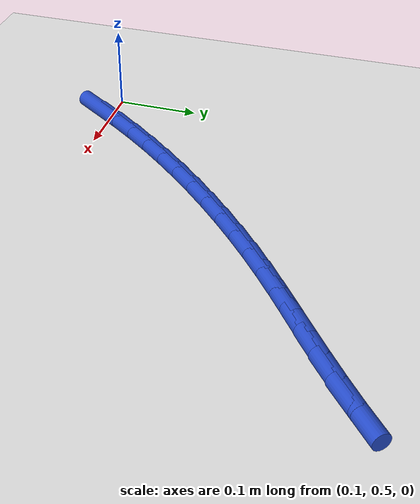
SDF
<sdf version="1.6">
 <world name="default">
  <model name="ground_plane">
   <static>1</static>
   <link name="link">
    <collision name="collision">
     <geometry><plane><normal>0 0 1</normal><size>100 100</size></plane></geometry>
     <surface><friction><ode><mu>100</mu><mu2>50</mu2></ode></friction></surface>
    </collision>
    <visual name="visual">
     <cast_shadows>0</cast_shadows>
     <geometry><plane><normal>0 0 1</normal><size>100 100</size></plane></geometry>
     <material>
      <script><uri>file://media/materials/scripts/gazebo.material</uri><name>Gazebo/WhiteGlow</name></script>
     </material>
    </visual>
   </link>
  </model>
  <model name="line">
   <link name="link_15">
    <pose>0.1416319098778478 0.48983314062781436 0.01 0 1.57 0.9726278926928924</pose>
    <collision name="collision">
     <geometry><cylinder><radius>0.01</radius><length>0.08</length></cylinder></geometry>
    </collision>
    <visual name="visual">
     <material>
      <script><name>Gazebo/Blue</name><uri>file://media/materials/scripts/gazebo.material</uri></script>
     </material>
     <geometry><cylinder><radius>0.01</radius><length>0.08</length></cylinder></geometry>
    </visual>
   </link>
   <link name="link_16">
    <pose>0.16139299856729963 0.518831672388761 0.01 0 1.57 0.9397980050142196</pose>
    <collision name="collision">
     <geometry><cylinder><radius>0.01</radius><length>0.08</length></cylinder></geometry>
    </collision>
    <visual name="visual">
     <material>
      <script><name>Gazebo/Blue</name><uri>file://media/materials/scripts/gazebo.material</uri></script>
     </material>
     <geometry><cylinder><radius>0.01</radius><length>0.08</length></cylinder></geometry>
    </visual>
   </link>
   <link name="link_17">
    <pose>0.18211116984044576 0.547187679252324 0.01 0 1.57 0.9083270444999217</pose>
    <collision name="collision">
     <geometry><cylinder><radius>0.01</radius><length>0.08</length></cylinder></geometry>
    </collision>
    <visual name="visual">
     <material>
      <script><name>Gazebo/Blue</name><uri>file://media/materials/scripts/gazebo.material</uri></script>
     </material>
     <geometry><cylinder><radius>0.01</radius><length>0.08</length></cylinder></geometry>
    </visual>
   </link>
   <link name="link_18">
    <pose>0.2037057947775712 0.5748706418161335 0.01 0 1.57 0.8780822926928599</pose>
    <collision name="collision">
     <geometry><cylinder><radius>0.01</radius><length>0.08</length></cylinder></geometry>
    </collision>
    <visual name="visual">
     <material>
      <script><name>Gazebo/Blue</name><uri>file://media/materials/scripts/gazebo.material</uri></script>
     </material>
     <geometry><cylinder><radius>0.01</radius><length>0.08</length></cylinder></geometry>
    </visual>
   </link>
   <link name="link_19">
    <pose>0.22609624445896115 0.6018500406778199 0.01 0 1.57 0.8489317722083948</pose>
    <collision name="collision">
     <geometry><cylinder><radius>0.01</radius><length>0.08</length></cylinder></geometry>
    </collision>
    <visual name="visual">
     <material>
      <script><name>Gazebo/Blue</name><uri>file://media/materials/scripts/gazebo.material</uri></script>
     </material>
     <geometry><cylinder><radius>0.01</radius><length>0.08</length></cylinder></geometry>
    </visual>
   </link>
   <link name="link_20">
    <pose>0.24920188996490072 0.6280953564350139 0.01 0 1.57 0.8207444296304203</pose>
    <collision name="collision">
     <geometry><cylinder><radius>0.01</radius><length>0.08</length></cylinder></geometry>
    </collision>
    <visual name="visual">
     <material>
      <script><name>Gazebo/Blue</name><uri>file://media/materials/scripts/gazebo.material</uri></script>
     </material>
     <geometry><cylinder><radius>0.01</radius><length>0.08</length></cylinder></geometry>
    </visual>
   </link>
   <link name="link_21">
    <pose>0.27294210237567496 0.6535760696853454 0.01 0 1.57 0.7933898880945509</pose>
    <collision name="collision">
     <geometry><cylinder><radius>0.01</radius><length>0.08</length></cylinder></geometry>
    </collision>
    <visual name="visual">
     <material>
      <script><name>Gazebo/Blue</name><uri>file://media/materials/scripts/gazebo.material</uri></script>
     </material>
     <geometry><cylinder><radius>0.01</radius><length>0.08</length></cylinder></geometry>
    </visual>
   </link>
   <link name="link_22">
    <pose>0.2972362527715693 0.6782616610264454 0.01 0 1.57 0.7667378213242816</pose>
    <collision name="collision">
     <geometry><cylinder><radius>0.01</radius><length>0.08</length></cylinder></geometry>
    </collision>
    <visual name="visual">
     <material>
      <script><name>Gazebo/Blue</name><uri>file://media/materials/scripts/gazebo.material</uri></script>
     </material>
     <geometry><cylinder><radius>0.01</radius><length>0.08</length></cylinder></geometry>
    </visual>
   </link>
   <link name="link_23">
    <pose>0.3220037122328683 0.7021216110559433 0.01 0 1.57 0.7406569783261147</pose>
    <collision name="collision">
     <geometry><cylinder><radius>0.01</radius><length>0.08</length></cylinder></geometry>
    </collision>
    <visual name="visual">
     <material>
      <script><name>Gazebo/Blue</name><uri>file://media/materials/scripts/gazebo.material</uri></script>
     </material>
     <geometry><cylinder><radius>0.01</radius><length>0.08</length></cylinder></geometry>
    </visual>
   </link>
   <link name="link_24">
    <pose>0.34716385183985754 0.7251254003714702 0.01 0 1.57 0.7150138648418488</pose>
    <collision name="collision">
     <geometry><cylinder><radius>0.01</radius><length>0.08</length></cylinder></geometry>
    </collision>
    <visual name="visual">
     <material>
      <script><name>Gazebo/Blue</name><uri>file://media/materials/scripts/gazebo.material</uri></script>
     </material>
     <geometry><cylinder><radius>0.01</radius><length>0.08</length></cylinder></geometry>
    </visual>
   </link>
   <link name="link_25">
    <pose>0.3726360426728219 0.7472425095706559 0.01 0 1.57 0.6896710749119628</pose>
    <collision name="collision">
     <geometry><cylinder><radius>0.01</radius><length>0.08</length></cylinder></geometry>
    </collision>
    <visual name="visual">
     <material>
      <script><name>Gazebo/Blue</name><uri>file://media/materials/scripts/gazebo.material</uri></script>
     </material>
     <geometry><cylinder><radius>0.01</radius><length>0.08</length></cylinder></geometry>
    </visual>
   </link>
   <link name="link_26">
    <pose>0.39833965599784876 0.7684424199007063 0.01 0 1.57 0.6659969141898564</pose>
    <collision name="collision">
     <geometry><cylinder><radius>0.01</radius><length>0.08</length></cylinder></geometry>
    </collision>
    <visual name="visual">
     <material>
      <script><name>Gazebo/Blue</name><uri>file://media/materials/scripts/gazebo.material</uri></script>
     </material>
     <geometry><cylinder><radius>0.01</radius><length>0.08</length></cylinder></geometry>
    </visual>
   </link>
   <link name="link_27">
    <pose>0.424217360001756 0.7887760600070499 0.01 0 1.57 0.649927666042742</pose>
    <collision name="collision">
     <geometry><cylinder><radius>0.01</radius><length>0.08</length></cylinder></geometry>
    </collision>
    <visual name="visual">
     <material>
      <script><name>Gazebo/Blue</name><uri>file://media/materials/scripts/gazebo.material</uri></script>
     </material>
     <geometry><cylinder><radius>0.01</radius><length>0.08</length></cylinder></geometry>
    </visual>
   </link>
   <link name="link_28">
    <pose>0.4502994846137048 0.8086008291163638 0.01 0 1.57 0.6433127780839777</pose>
    <collision name="collision">
     <geometry><cylinder><radius>0.01</radius><length>0.08</length></cylinder></geometry>
    </collision>
    <visual name="visual">
     <material>
      <script><name>Gazebo/Blue</name><uri>file://media/materials/scripts/gazebo.material</uri></script>
     </material>
     <geometry><cylinder><radius>0.01</radius><length>0.08</length></cylinder></geometry>
    </visual>
   </link>
   <link name="link_29">
    <pose>0.4766369747168943 0.8283461975410411 0.01 0 1.57 0.6462000515691043</pose>
    <collision name="collision">
     <geometry><cylinder><radius>0.01</radius><length>0.08</length></cylinder></geometry>
    </collision>
    <visual name="visual">
     <material>
      <script><name>Gazebo/Blue</name><uri>file://media/materials/scripts/gazebo.material</uri></script>
     </material>
     <geometry><cylinder><radius>0.01</radius><length>0.08</length></cylinder></geometry>
    </visual>
   </link>
   <link name="link_30">
    <pose>0.5032807751945245 0.8484416355934762 0.01 0 1.57 0.6581326444454488</pose>
    <collision name="collision">
     <geometry><cylinder><radius>0.01</radius><length>0.08</length></cylinder></geometry>
    </collision>
    <visual name="visual">
     <material>
      <script><name>Gazebo/Blue</name><uri>file://media/materials/scripts/gazebo.material</uri></script>
     </material>
     <geometry><cylinder><radius>0.01</radius><length>0.08</length></cylinder></geometry>
    </visual>
   </link>
   <link name="link_31">
    <pose>0.5302818309297943 0.8693166135860619 0.01 0 1.57 0.6782146613536185</pose>
    <collision name="collision">
     <geometry><cylinder><radius>0.01</radius><length>0.08</length></cylinder></geometry>
    </collision>
    <visual name="visual">
     <material>
      <script><name>Gazebo/Blue</name><uri>file://media/materials/scripts/gazebo.material</uri></script>
     </material>
     <geometry><cylinder><radius>0.01</radius><length>0.08</length></cylinder></geometry>
    </visual>
   </link>
   <link name="link_32">
    <pose>0.5576910868059037 0.8914006018311927 0.01 0 1.57 0.7052087478321921</pose>
    <collision name="collision">
     <geometry><cylinder><radius>0.01</radius><length>0.08</length></cylinder></geometry>
    </collision>
    <visual name="visual">
     <material>
      <script><name>Gazebo/Blue</name><uri>file://media/materials/scripts/gazebo.material</uri></script>
     </material>
     <geometry><cylinder><radius>0.01</radius><length>0.08</length></cylinder></geometry>
    </visual>
   </link>
  </model>
 </world>
</sdf>
